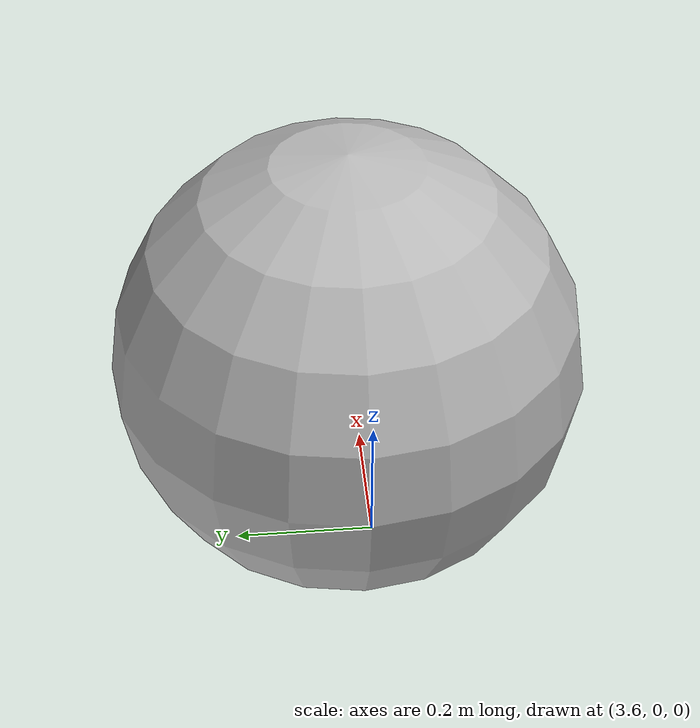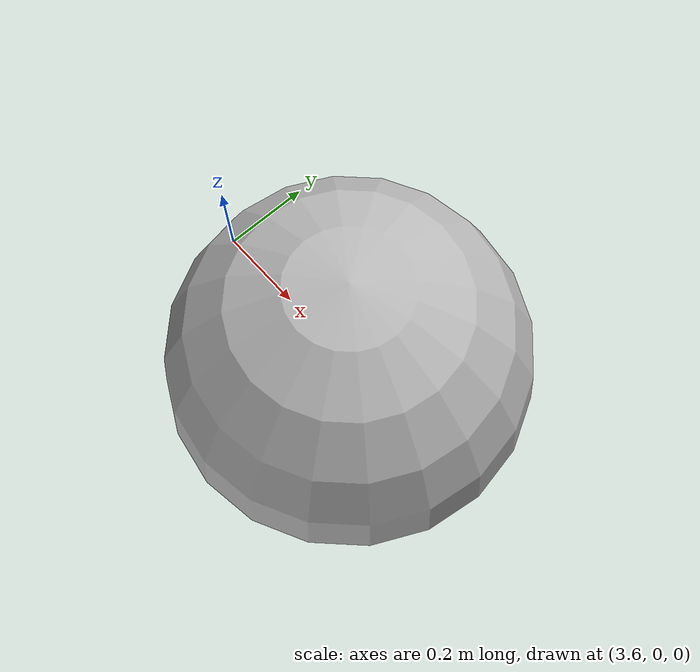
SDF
<?xml version="1.0"?>
<sdf version="1.6">

<!-- Goal. -->
<model name="goal">
  <link name="goal">
    <pose>4 0 0 0 0 0</pose>

    <collision name="goal_collision">
      <geometry>
        <sphere>
          <radius>0.4</radius>
        </sphere>
      </geometry>
    </collision>

    <visual name="visual">
      <geometry>
        <sphere>
          <radius>0.4</radius>
        </sphere>
      </geometry>
      <material>
        <script>
          <uri>model://goal/materials/scripts</uri>
          <uri>model://goal/materials/textures</uri>
          <name>vehicle/goal</name>
        </script>
      </material>
    </visual>
  </link>
</model>
</sdf>
